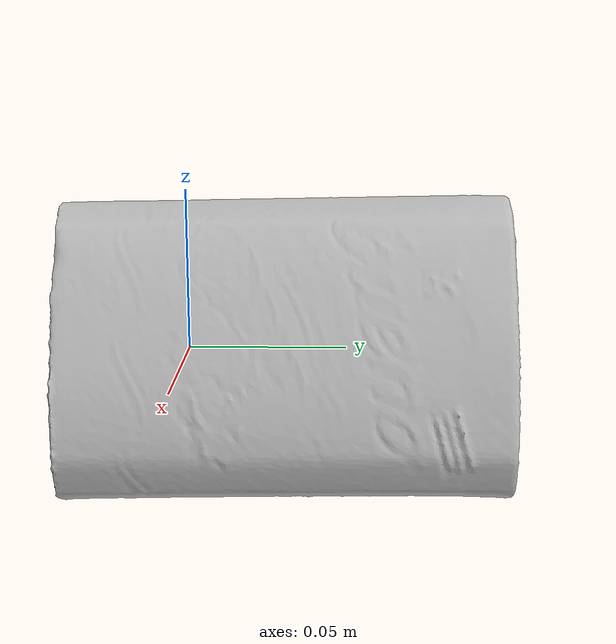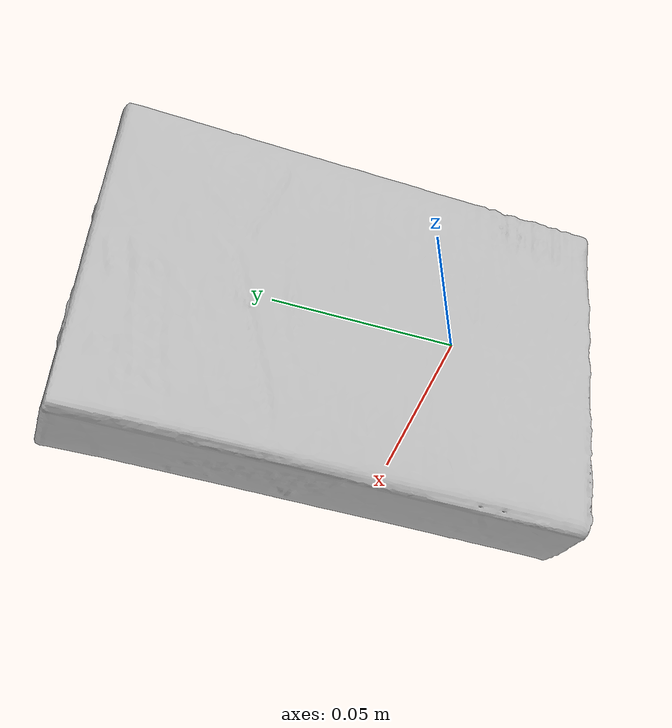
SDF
<?xml version='1.0'?>
<sdf version="1.4">
  <model name="ChocolateBars">
    <static>false</static>
    <link name="link">
      <inertial>
        <pose>0.009732552470615472 0.030750376480863758 0.002406583294770082 1.5485813383221072 0.34550560476249625 3.136635390379149</pose>
        <mass>0.046919470417349805</mass>
        <inertia>
          <ixx>0.00010272477317332602</ixx>
          <ixy>-7.847610885002994e-22</ixy>
          <ixz>5.797031603906999e-21</ixz>
          <iyy>7.844548616064338e-05</iyy>
          <iyz>-2.5498055083463842e-20</iyz>
          <izz>3.562274525821355e-05</izz>
        </inertia>
      </inertial>
      <collision name="collision">
        <geometry>
          <mesh>
            <!-- Use a downsampled mesh for collisions -->
            <uri>model:///ChocolateBars/ChocolateBars_250_collision.obj</uri>
	        </mesh>
        </geometry>
        <surface>
      </surface>
      </collision>
      <visual name="visual">
        <geometry>
          <mesh>
            <uri>model:///ChocolateBars/ChocolateBars_25k_tex.obj</uri>
	        </mesh>
        </geometry>
        <material>
          <script>
            <uri>model:///ChocolateBars/ChocolateBars.material</uri>
            <name>ChocolateBars</name>
          </script>
        </material>
      </visual>
    </link>
  </model>
</sdf>
